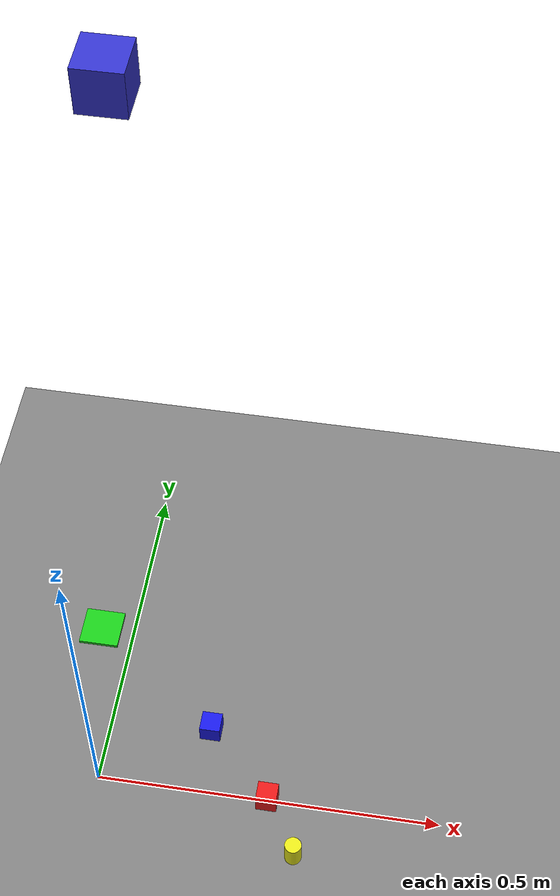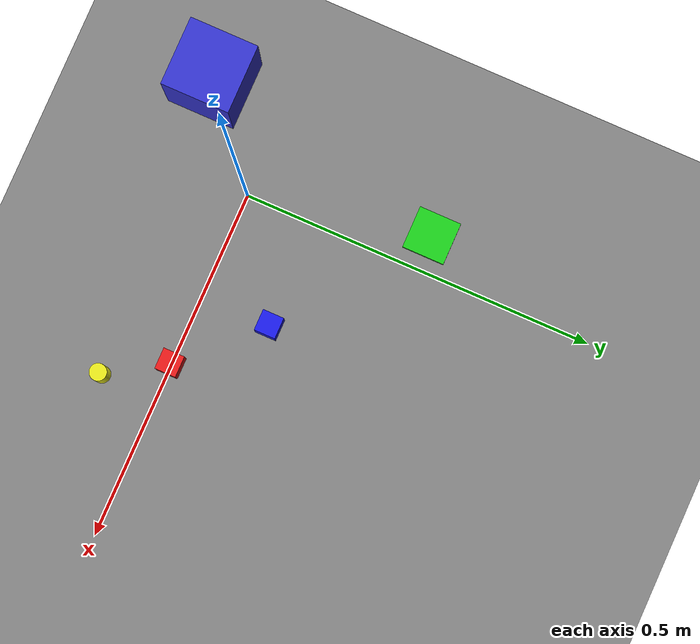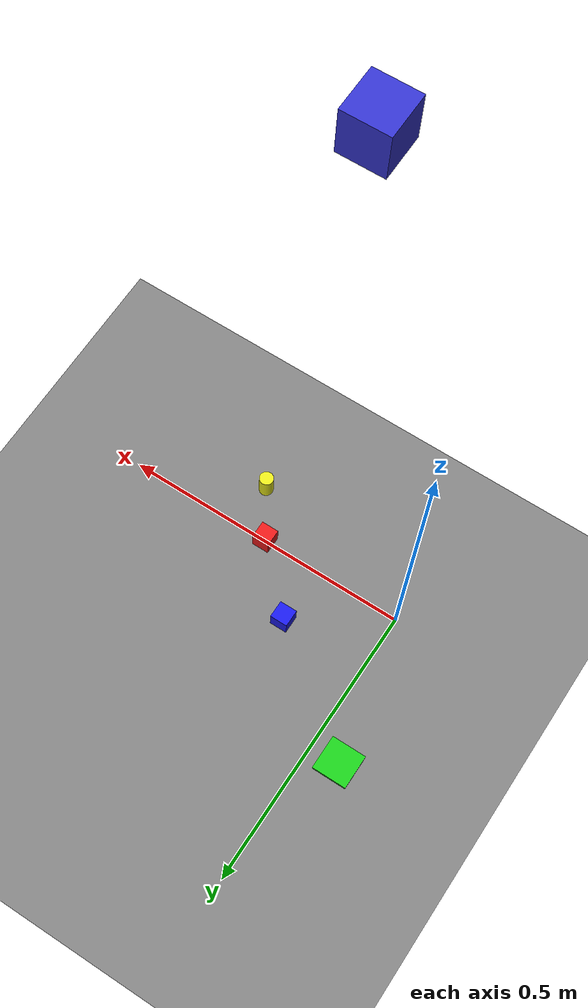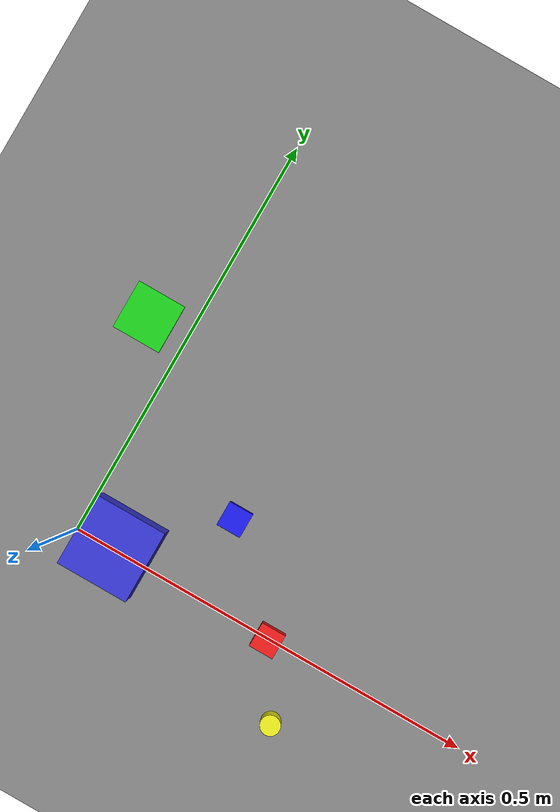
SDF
<?xml version="1.0" ?>

<sdf version="1.9">

  <world name="pick_place_depth">

    <physics name="1ms" type="ode">
      <max_step_size>0.001</max_step_size>
      <real_time_factor>1</real_time_factor>
      <real_time_update_rate>1000</real_time_update_rate>
    </physics>

    <plugin
      filename="gz-sim-physics-system"
      name="gz::sim::systems::Physics"/>

    <plugin
      filename="gz-sim-user-commands-system"
      name="gz::sim::systems::UserCommands"/>

    <plugin
      filename="gz-sim-scene-broadcaster-system"
      name="gz::sim::systems::SceneBroadcaster"/>

    <plugin
      filename="gz-sim-sensors-system"
      name="gz::sim::systems::Sensors">
      <render_engine>ogre2</render_engine>
    </plugin>

    <light type="directional" name="sun">
      <cast_shadows>true</cast_shadows>
      <pose>0 0 10 0 0 0</pose>
      <diffuse>0.8 0.8 0.8 1</diffuse>
      <specular>0.2 0.2 0.2 1</specular>
      <direction>-0.5 0.5 -1</direction>
    </light>

    <model name="ground_plane">
      <static>true</static>

      <link name="link">

        <collision name="collision">
          <geometry>
            <plane>
              <normal>0 0 1</normal>
              <size>20 20</size>
            </plane>
          </geometry>
        </collision>

        <visual name="visual">
          <geometry>
            <plane>
              <normal>0 0 1</normal>
              <size>20 20</size>
            </plane>
          </geometry>
          <material>
            <ambient>0.5 0.5 0.5 1</ambient>
            <diffuse>0.5 0.5 0.5 1</diffuse>
          </material>
        </visual>

      </link>
    </model>

    <!-- Pick object: a small red cube the arm can grasp            -->

    <model name="pick_object">
      <static>false</static>
      <pose>0.25 0.0 0.015 0 0 0</pose>

      <link name="link">
        <inertial>
          <mass>0.02</mass>
          <inertia>
            <ixx>1e-5</ixx>
            <ixy>0</ixy>
            <ixz>0</ixz>
            <iyy>1e-5</iyy>
            <iyz>0</iyz>
            <izz>1e-5</izz>
          </inertia>
        </inertial>

        <collision name="collision">
          <geometry>
            <box>
              <size>0.03 0.03 0.03</size>
            </box>
          </geometry>
          <surface>
            <friction>
              <ode>
                <mu>1.0</mu>
                <mu2>1.0</mu2>
              </ode>
            </friction>
          </surface>
        </collision>

        <visual name="visual">
          <geometry>
            <box>
              <size>0.03 0.03 0.03</size>
            </box>
          </geometry>
          <material>
            <ambient>0.9 0.1 0.1 1</ambient>
            <diffuse>0.9 0.1 0.1 1</diffuse>
            <specular>0.1 0.1 0.1 1</specular>
          </material>
        </visual>
      </link>
    </model>

    <!-- Place target: a static green pad                           -->

    <model name="place_target">
      <static>true</static>
      <pose>-0.05 0.25 0.0025 0 0 0</pose>

      <link name="link">
        <collision name="collision">
          <geometry>
            <box>
              <size>0.06 0.06 0.005</size>
            </box>
          </geometry>
        </collision>

        <visual name="visual">
          <geometry>
            <box>
              <size>0.06 0.06 0.005</size>
            </box>
          </geometry>
          <material>
            <ambient>0.1 0.8 0.1 1</ambient>
            <diffuse>0.1 0.8 0.1 1</diffuse>
            <specular>0.1 0.1 0.1 1</specular>
          </material>
        </visual>
      </link>
    </model>

    <!-- Extra objects for clutter / domain randomization tests      -->

    <model name="blue_cube">
      <static>false</static>
      <pose>0.15 0.1 0.015 0 0 0</pose>
      <link name="link">
        <inertial>
          <mass>0.02</mass>
          <inertia>
            <ixx>1e-5</ixx><ixy>0</ixy><ixz>0</ixz>
            <iyy>1e-5</iyy><iyz>0</iyz><izz>1e-5</izz>
          </inertia>
        </inertial>
        <collision name="collision">
          <geometry><box><size>0.03 0.03 0.03</size></box></geometry>
          <surface><friction><ode><mu>1.0</mu><mu2>1.0</mu2></ode></friction></surface>
        </collision>
        <visual name="visual">
          <geometry><box><size>0.03 0.03 0.03</size></box></geometry>
          <material><ambient>0.1 0.1 0.9 1</ambient><diffuse>0.1 0.1 0.9 1</diffuse></material>
        </visual>
      </link>
    </model>

    <model name="yellow_cylinder">
      <static>false</static>
      <pose>0.3 -0.08 0.02 0 0 0</pose>
      <link name="link">
        <inertial>
          <mass>0.015</mass>
          <inertia>
            <ixx>5e-6</ixx><ixy>0</ixy><ixz>0</ixz>
            <iyy>5e-6</iyy><iyz>0</iyz><izz>5e-6</izz>
          </inertia>
        </inertial>
        <collision name="collision">
          <geometry><cylinder><radius>0.012</radius><length>0.04</length></cylinder></geometry>
          <surface><friction><ode><mu>0.8</mu><mu2>0.8</mu2></ode></friction></surface>
        </collision>
        <visual name="visual">
          <geometry><cylinder><radius>0.012</radius><length>0.04</length></cylinder></geometry>
          <material><ambient>0.9 0.9 0.1 1</ambient><diffuse>0.9 0.9 0.1 1</diffuse></material>
        </visual>
      </link>
    </model>

    <!-- Overhead RGB-D camera (RealSense D435-style)               -->
    <!-- Publishes: color image + depth image + camera_info         -->
    <!-- (bridged to ROS by gazebo.launch.py)                       -->
    <!-- pitch=pi/2 points it straight down at the scene -- the      -->
    <!-- original identity pose left it facing the horizon, so it   -->
    <!-- never actually saw the table/objects below it.              -->

    <model name="overhead_camera">
      <static>true</static>
      <pose>0.1 0.1 1.2 0 1.5707963 0</pose>

      <link name="link">
        <visual name="visual">
          <geometry>
            <box>
              <size>0.05 0.05 0.05</size>
            </box>
          </geometry>
          <material>
            <ambient>0.2 0.2 0.8 1</ambient>
            <diffuse>0.2 0.2 0.8 1</diffuse>
          </material>
        </visual>

        <!-- RGB camera -->
        <sensor name="camera" type="camera">
          <always_on>1</always_on>
          <update_rate>30</update_rate>
          <topic>image</topic>
          <camera>
            <horizontal_fov>1.047</horizontal_fov>
            <image>
              <width>640</width>
              <height>480</height>
              <format>R8G8B8</format>
            </image>
            <clip>
              <near>0.1</near>
              <far>100</far>
            </clip>
          </camera>
        </sensor>

        <!-- Depth camera -->
        <sensor name="depth_camera" type="depth_camera">
          <always_on>1</always_on>
          <update_rate>30</update_rate>
          <topic>depth/image</topic>
          <camera>
            <horizontal_fov>1.047</horizontal_fov>
            <image>
              <width>640</width>
              <height>480</height>
              <format>R_FLOAT32</format>
            </image>
            <clip>
              <near>0.1</near>
              <far>10.0</far>
            </clip>
          </camera>
        </sensor>

      </link>
    </model>

  </world>

</sdf>
